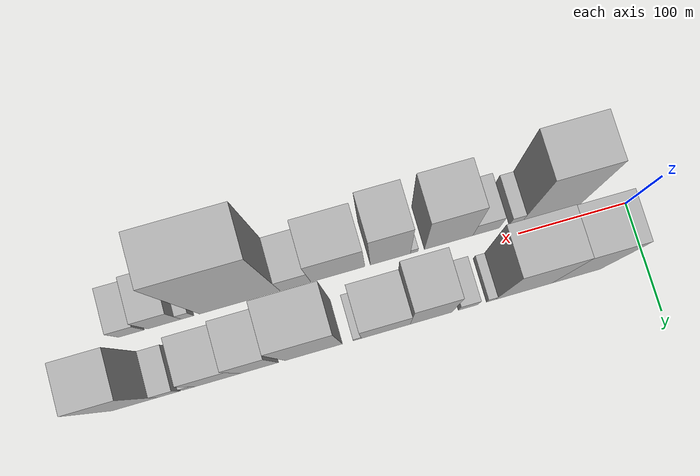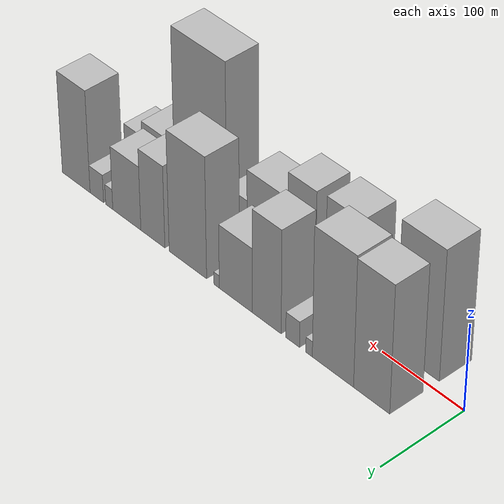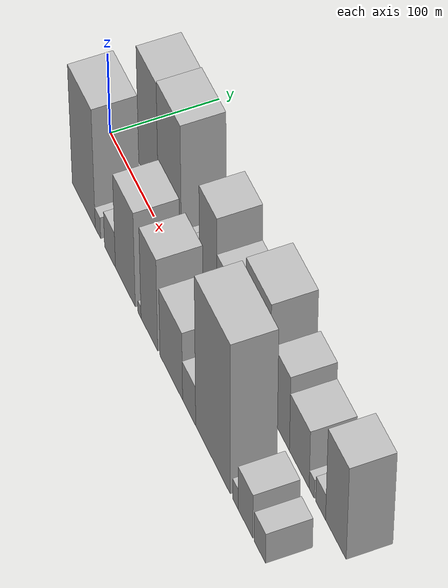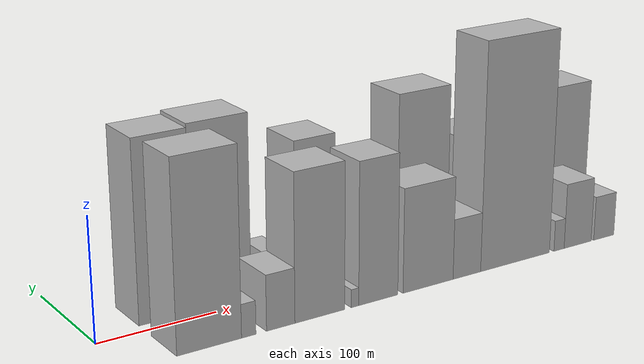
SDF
<sdf version="1.6">
 <world name="default">
  <scene>
   <sky><clouds><speed>12</speed></clouds></sky>
   <ambient>0.4 0.4 0.4 1</ambient>
   <background>0.7 0.7 0.7 1</background>
   <shadows>1</shadows>
  </scene>
  <gravity>0 0 -9.8066</gravity>
  <magnetic_field>6e-06 2.3e-05 -4.2e-05</magnetic_field>
  <physics default="0" name="default_physics" type="ode">
   <ode>
    <solver>
     <type>quick</type>
     <iters>10</iters>
     <sor>1.0</sor>
     <use_dynamic_moi_rescaling>0</use_dynamic_moi_rescaling>
    </solver>
    <constraints>
     <cfm>0</cfm>
     <erp>0.2</erp>
     <contact_max_correcting_vel>100</contact_max_correcting_vel>
     <contact_surface_layer>0.001</contact_surface_layer>
    </constraints>
   </ode>
   <max_step_size>0.004</max_step_size>
   <real_time_factor>1</real_time_factor>
   <real_time_update_rate>250</real_time_update_rate>
  </physics>
  <light name="sun" type="directional">
   <pose>0 0 10 0 0 0</pose>
   <diffuse>0.8 0.8 0.8 1</diffuse>
   <specular>0.2 0.2 0.2 1</specular>
   <attenuation>
    <range>1000</range>
    <constant>0.9</constant>
    <linear>0.01</linear>
    <quadratic>0.001</quadratic>
   </attenuation>
   <direction>-0.5 0.1 -0.9</direction>
  </light>
  <model name="building_1">
   <static>1</static>
   <pose>62.2849 30.0000 0 0.000000 0.000000 1.570796</pose>
   <link name="link">
    <pose>0 0 73.50 0 0 0</pose>
    <collision name="collision"><geometry><box><size>40.0000 44.5698 147.0000</size></box></geometry></collision>
    <visual name="visual">
     <cast_shadows>0</cast_shadows>
     <geometry><box><size>40.0000 44.5698 147.0000</size></box></geometry>
     <material>
      <script>
       <uri>model://HANNAS_wall/materials/scripts</uri>
       <uri>model://HANNAS_wall/materials/textures</uri>
       <name>vrc/HANNAS_wall</name>
      </script>
     </material>
    </visual>
   </link>
  </model>
  <model name="building_2">
   <static>1</static>
   <pose>110.5706 30.0000 0 0.000000 0.000000 1.570796</pose>
   <link name="link">
    <pose>0 0 75.00 0 0 0</pose>
    <collision name="collision"><geometry><box><size>40.0000 52.0017 150.0000</size></box></geometry></collision>
    <visual name="visual">
     <cast_shadows>0</cast_shadows>
     <geometry><box><size>40.0000 52.0017 150.0000</size></box></geometry>
     <material>
      <script>
       <uri>model://HANNAS_wall/materials/scripts</uri>
       <uri>model://HANNAS_wall/materials/textures</uri>
       <name>vrc/HANNAS_wall</name>
      </script>
     </material>
    </visual>
   </link>
  </model>
  <model name="building_3">
   <static>1</static>
   <pose>140.7475 30.0000 0 0.000000 0.000000 1.570796</pose>
   <link name="link">
    <pose>0 0 9.00 0 0 0</pose>
    <collision name="collision"><geometry><box><size>40.0000 8.3522 18.0000</size></box></geometry></collision>
    <visual name="visual">
     <cast_shadows>0</cast_shadows>
     <geometry><box><size>40.0000 8.3522 18.0000</size></box></geometry>
     <material>
      <script>
       <uri>model://HANNAS_wall/materials/scripts</uri>
       <uri>model://HANNAS_wall/materials/textures</uri>
       <name>vrc/HANNAS_wall</name>
      </script>
     </material>
    </visual>
   </link>
  </model>
  <model name="building_4">
   <static>1</static>
   <pose>161.8070 30.0000 0 0.000000 0.000000 1.570796</pose>
   <link name="link">
    <pose>0 0 15.00 0 0 0</pose>
    <collision name="collision"><geometry><box><size>40.0000 17.7667 30.0000</size></box></geometry></collision>
    <visual name="visual">
     <cast_shadows>0</cast_shadows>
     <geometry><box><size>40.0000 17.7667 30.0000</size></box></geometry>
     <material>
      <script>
       <uri>model://HANNAS_wall/materials/scripts</uri>
       <uri>model://HANNAS_wall/materials/textures</uri>
       <name>vrc/HANNAS_wall</name>
      </script>
     </material>
    </visual>
   </link>
  </model>
  <model name="building_5">
   <static>1</static>
   <pose>195.6991 30.0000 0 0.000000 0.000000 1.570796</pose>
   <link name="link">
    <pose>0 0 60.00 0 0 0</pose>
    <collision name="collision"><geometry><box><size>40.0000 38.0176 120.0000</size></box></geometry></collision>
    <visual name="visual">
     <cast_shadows>0</cast_shadows>
     <geometry><box><size>40.0000 38.0176 120.0000</size></box></geometry>
     <material>
      <script>
       <uri>model://HANNAS_wall/materials/scripts</uri>
       <uri>model://HANNAS_wall/materials/textures</uri>
       <name>vrc/HANNAS_wall</name>
      </script>
     </material>
    </visual>
   </link>
  </model>
  <model name="building_6">
   <static>1</static>
   <pose>236.7764 30.0000 0 0.000000 0.000000 1.570796</pose>
   <link name="link">
    <pose>0 0 37.50 0 0 0</pose>
    <collision name="collision"><geometry><box><size>40.0000 44.1371 75.0000</size></box></geometry></collision>
    <visual name="visual">
     <cast_shadows>0</cast_shadows>
     <geometry><box><size>40.0000 44.1371 75.0000</size></box></geometry>
     <material>
      <script>
       <uri>model://HANNAS_wall/materials/scripts</uri>
       <uri>model://HANNAS_wall/materials/textures</uri>
       <name>vrc/HANNAS_wall</name>
      </script>
     </material>
    </visual>
   </link>
  </model>
  <model name="building_7">
   <static>1</static>
   <pose>262.4661 30.0000 0 0.000000 0.000000 1.570796</pose>
   <link name="link">
    <pose>0 0 7.50 0 0 0</pose>
    <collision name="collision"><geometry><box><size>40.0000 7.2424 15.0000</size></box></geometry></collision>
    <visual name="visual">
     <cast_shadows>0</cast_shadows>
     <geometry><box><size>40.0000 7.2424 15.0000</size></box></geometry>
     <material>
      <script>
       <uri>model://HANNAS_wall/materials/scripts</uri>
       <uri>model://HANNAS_wall/materials/textures</uri>
       <name>vrc/HANNAS_wall</name>
      </script>
     </material>
    </visual>
   </link>
  </model>
  <model name="building_8">
   <static>1</static>
   <pose>301.9449 30.0000 0 0.000000 0.000000 1.570796</pose>
   <link name="link">
    <pose>0 0 70.50 0 0 0</pose>
    <collision name="collision"><geometry><box><size>40.0000 51.7151 141.0000</size></box></geometry></collision>
    <visual name="visual">
     <cast_shadows>0</cast_shadows>
     <geometry><box><size>40.0000 51.7151 141.0000</size></box></geometry>
     <material>
      <script>
       <uri>model://HANNAS_wall/materials/scripts</uri>
       <uri>model://HANNAS_wall/materials/textures</uri>
       <name>vrc/HANNAS_wall</name>
      </script>
     </material>
    </visual>
   </link>
  </model>
  <model name="building_9">
   <static>1</static>
   <pose>350.8130 30.0000 0 0.000000 0.000000 1.570796</pose>
   <link name="link">
    <pose>0 0 48.00 0 0 0</pose>
    <collision name="collision"><geometry><box><size>40.0000 34.0211 96.0000</size></box></geometry></collision>
    <visual name="visual">
     <cast_shadows>0</cast_shadows>
     <geometry><box><size>40.0000 34.0211 96.0000</size></box></geometry>
     <material>
      <script>
       <uri>model://HANNAS_wall/materials/scripts</uri>
       <uri>model://HANNAS_wall/materials/textures</uri>
       <name>vrc/HANNAS_wall</name>
      </script>
     </material>
    </visual>
   </link>
  </model>
  <model name="building_10">
   <static>1</static>
   <pose>388.0359 30.0000 0 0.000000 0.000000 1.570796</pose>
   <link name="link">
    <pose>0 0 37.50 0 0 0</pose>
    <collision name="collision"><geometry><box><size>40.0000 40.4247 75.0000</size></box></geometry></collision>
    <visual name="visual">
     <cast_shadows>0</cast_shadows>
     <geometry><box><size>40.0000 40.4247 75.0000</size></box></geometry>
     <material>
      <script>
       <uri>model://HANNAS_wall/materials/scripts</uri>
       <uri>model://HANNAS_wall/materials/textures</uri>
       <name>vrc/HANNAS_wall</name>
      </script>
     </material>
    </visual>
   </link>
  </model>
  <model name="building_11">
   <static>1</static>
   <pose>413.4370 30.0000 0 0.000000 0.000000 1.570796</pose>
   <link name="link">
    <pose>0 0 12.00 0 0 0</pose>
    <collision name="collision"><geometry><box><size>40.0000 10.3775 24.0000</size></box></geometry></collision>
    <visual name="visual">
     <cast_shadows>0</cast_shadows>
     <geometry><box><size>40.0000 10.3775 24.0000</size></box></geometry>
     <material>
      <script>
       <uri>model://HANNAS_wall/materials/scripts</uri>
       <uri>model://HANNAS_wall/materials/textures</uri>
       <name>vrc/HANNAS_wall</name>
      </script>
     </material>
    </visual>
   </link>
  </model>
  <model name="building_12">
   <static>1</static>
   <pose>431.5177 30.0000 0 0.000000 0.000000 1.570796</pose>
   <link name="link">
    <pose>0 0 16.50 0 0 0</pose>
    <collision name="collision"><geometry><box><size>40.0000 19.7840 33.0000</size></box></geometry></collision>
    <visual name="visual">
     <cast_shadows>0</cast_shadows>
     <geometry><box><size>40.0000 19.7840 33.0000</size></box></geometry>
     <material>
      <script>
       <uri>model://HANNAS_wall/materials/scripts</uri>
       <uri>model://HANNAS_wall/materials/textures</uri>
       <name>vrc/HANNAS_wall</name>
      </script>
     </material>
    </visual>
   </link>
  </model>
  <model name="building_13">
   <static>1</static>
   <pose>462.0209 30.0000 0 0.000000 0.000000 1.570796</pose>
   <link name="link">
    <pose>0 0 60.00 0 0 0</pose>
    <collision name="collision"><geometry><box><size>40.0000 41.2224 120.0000</size></box></geometry></collision>
    <visual name="visual">
     <cast_shadows>0</cast_shadows>
     <geometry><box><size>40.0000 41.2224 120.0000</size></box></geometry>
     <material>
      <script>
       <uri>model://HANNAS_wall/materials/scripts</uri>
       <uri>model://HANNAS_wall/materials/textures</uri>
       <name>vrc/HANNAS_wall</name>
      </script>
     </material>
    </visual>
   </link>
  </model>
  <model name="building_14">
   <static>1</static>
   <pose>66.6014 -30.0000 0 0.000000 0.000000 1.570796</pose>
   <link name="link">
    <pose>0 0 75.00 0 0 0</pose>
    <collision name="collision"><geometry><box><size>40.0000 53.2028 150.0000</size></box></geometry></collision>
    <visual name="visual">
     <cast_shadows>0</cast_shadows>
     <geometry><box><size>40.0000 53.2028 150.0000</size></box></geometry>
     <material>
      <script>
       <uri>model://HANNAS_wall/materials/scripts</uri>
       <uri>model://HANNAS_wall/materials/textures</uri>
       <name>vrc/HANNAS_wall</name>
      </script>
     </material>
    </visual>
   </link>
  </model>
  <model name="building_15">
   <static>1</static>
   <pose>99.3333 -30.0000 0 0.000000 0.000000 1.570796</pose>
   <link name="link">
    <pose>0 0 13.50 0 0 0</pose>
    <collision name="collision"><geometry><box><size>40.0000 12.2610 27.0000</size></box></geometry></collision>
    <visual name="visual">
     <cast_shadows>0</cast_shadows>
     <geometry><box><size>40.0000 12.2610 27.0000</size></box></geometry>
     <material>
      <script>
       <uri>model://HANNAS_wall/materials/scripts</uri>
       <uri>model://HANNAS_wall/materials/textures</uri>
       <name>vrc/HANNAS_wall</name>
      </script>
     </material>
    </visual>
   </link>
  </model>
  <model name="building_16">
   <static>1</static>
   <pose>126.8223 -30.0000 0 0.000000 0.000000 1.570796</pose>
   <link name="link">
    <pose>0 0 22.50 0 0 0</pose>
    <collision name="collision"><geometry><box><size>40.0000 24.7169 45.0000</size></box></geometry></collision>
    <visual name="visual">
     <cast_shadows>0</cast_shadows>
     <geometry><box><size>40.0000 24.7169 45.0000</size></box></geometry>
     <material>
      <script>
       <uri>model://HANNAS_wall/materials/scripts</uri>
       <uri>model://HANNAS_wall/materials/textures</uri>
       <name>vrc/HANNAS_wall</name>
      </script>
     </material>
    </visual>
   </link>
  </model>
  <model name="building_17">
   <static>1</static>
   <pose>161.5404 -30.0000 0 0.000000 0.000000 1.570796</pose>
   <link name="link">
    <pose>0 0 60.00 0 0 0</pose>
    <collision name="collision"><geometry><box><size>40.0000 44.7193 120.0000</size></box></geometry></collision>
    <visual name="visual">
     <cast_shadows>0</cast_shadows>
     <geometry><box><size>40.0000 44.7193 120.0000</size></box></geometry>
     <material>
      <script>
       <uri>model://HANNAS_wall/materials/scripts</uri>
       <uri>model://HANNAS_wall/materials/textures</uri>
       <name>vrc/HANNAS_wall</name>
      </script>
     </material>
    </visual>
   </link>
  </model>
  <model name="building_18">
   <static>1</static>
   <pose>193.3430 -30.0000 0 0.000000 0.000000 1.570796</pose>
   <link name="link">
    <pose>0 0 7.50 0 0 0</pose>
    <collision name="collision"><geometry><box><size>40.0000 6.8859 15.0000</size></box></geometry></collision>
    <visual name="visual">
     <cast_shadows>0</cast_shadows>
     <geometry><box><size>40.0000 6.8859 15.0000</size></box></geometry>
     <material>
      <script>
       <uri>model://HANNAS_wall/materials/scripts</uri>
       <uri>model://HANNAS_wall/materials/textures</uri>
       <name>vrc/HANNAS_wall</name>
      </script>
     </material>
    </visual>
   </link>
  </model>
  <model name="building_19">
   <static>1</static>
   <pose>215.1888 -30.0000 0 0.000000 0.000000 1.570796</pose>
   <link name="link">
    <pose>0 0 58.50 0 0 0</pose>
    <collision name="collision"><geometry><box><size>40.0000 36.8058 117.0000</size></box></geometry></collision>
    <visual name="visual">
     <cast_shadows>0</cast_shadows>
     <geometry><box><size>40.0000 36.8058 117.0000</size></box></geometry>
     <material>
      <script>
       <uri>model://HANNAS_wall/materials/scripts</uri>
       <uri>model://HANNAS_wall/materials/textures</uri>
       <name>vrc/HANNAS_wall</name>
      </script>
     </material>
    </visual>
   </link>
  </model>
  <model name="building_20">
   <static>1</static>
   <pose>263.2502 -30.0000 0 0.000000 0.000000 1.570796</pose>
   <link name="link">
    <pose>0 0 43.50 0 0 0</pose>
    <collision name="collision"><geometry><box><size>40.0000 49.3170 87.0000</size></box></geometry></collision>
    <visual name="visual">
     <cast_shadows>0</cast_shadows>
     <geometry><box><size>40.0000 49.3170 87.0000</size></box></geometry>
     <material>
      <script>
       <uri>model://HANNAS_wall/materials/scripts</uri>
       <uri>model://HANNAS_wall/materials/textures</uri>
       <name>vrc/HANNAS_wall</name>
      </script>
     </material>
    </visual>
   </link>
  </model>
  <model name="building_21">
   <static>1</static>
   <pose>301.9464 -30.0000 0 0.000000 0.000000 1.570796</pose>
   <link name="link">
    <pose>0 0 25.50 0 0 0</pose>
    <collision name="collision"><geometry><box><size>40.0000 28.0754 51.0000</size></box></geometry></collision>
    <visual name="visual">
     <cast_shadows>0</cast_shadows>
     <geometry><box><size>40.0000 28.0754 51.0000</size></box></geometry>
     <material>
      <script>
       <uri>model://HANNAS_wall/materials/scripts</uri>
       <uri>model://HANNAS_wall/materials/textures</uri>
       <name>vrc/HANNAS_wall</name>
      </script>
     </material>
    </visual>
   </link>
  </model>
  <model name="building_22">
   <static>1</static>
   <pose>352.5730 -30.0000 0 0.000000 0.000000 1.570796</pose>
   <link name="link">
    <pose>0 0 96.00 0 0 0</pose>
    <collision name="collision"><geometry><box><size>40.0000 73.1778 192.0000</size></box></geometry></collision>
    <visual name="visual">
     <cast_shadows>0</cast_shadows>
     <geometry><box><size>40.0000 73.1778 192.0000</size></box></geometry>
     <material>
      <script>
       <uri>model://HANNAS_wall/materials/scripts</uri>
       <uri>model://HANNAS_wall/materials/textures</uri>
       <name>vrc/HANNAS_wall</name>
      </script>
     </material>
    </visual>
   </link>
  </model>
  <model name="building_23">
   <static>1</static>
   <pose>399.8176 -30.0000 0 0.000000 0.000000 1.570796</pose>
   <link name="link">
    <pose>0 0 13.50 0 0 0</pose>
    <collision name="collision"><geometry><box><size>40.0000 11.3113 27.0000</size></box></geometry></collision>
    <visual name="visual">
     <cast_shadows>0</cast_shadows>
     <geometry><box><size>40.0000 11.3113 27.0000</size></box></geometry>
     <material>
      <script>
       <uri>model://HANNAS_wall/materials/scripts</uri>
       <uri>model://HANNAS_wall/materials/textures</uri>
       <name>vrc/HANNAS_wall</name>
      </script>
     </material>
    </visual>
   </link>
  </model>
  <model name="building_24">
   <static>1</static>
   <pose>420.6552 -30.0000 0 0.000000 0.000000 1.570796</pose>
   <link name="link">
    <pose>0 0 28.50 0 0 0</pose>
    <collision name="collision"><geometry><box><size>40.0000 30.3638 57.0000</size></box></geometry></collision>
    <visual name="visual">
     <cast_shadows>0</cast_shadows>
     <geometry><box><size>40.0000 30.3638 57.0000</size></box></geometry>
     <material>
      <script>
       <uri>model://HANNAS_wall/materials/scripts</uri>
       <uri>model://HANNAS_wall/materials/textures</uri>
       <name>vrc/HANNAS_wall</name>
      </script>
     </material>
    </visual>
   </link>
  </model>
  <model name="building_25">
   <static>1</static>
   <pose>450.4312 -30.0000 0 0.000000 0.000000 1.570796</pose>
   <link name="link">
    <pose>0 0 19.50 0 0 0</pose>
    <collision name="collision"><geometry><box><size>40.0000 23.1883 39.0000</size></box></geometry></collision>
    <visual name="visual">
     <cast_shadows>0</cast_shadows>
     <geometry><box><size>40.0000 23.1883 39.0000</size></box></geometry>
     <material>
      <script>
       <uri>model://HANNAS_wall/materials/scripts</uri>
       <uri>model://HANNAS_wall/materials/textures</uri>
       <name>vrc/HANNAS_wall</name>
      </script>
     </material>
    </visual>
   </link>
  </model>
 </world>
</sdf>
